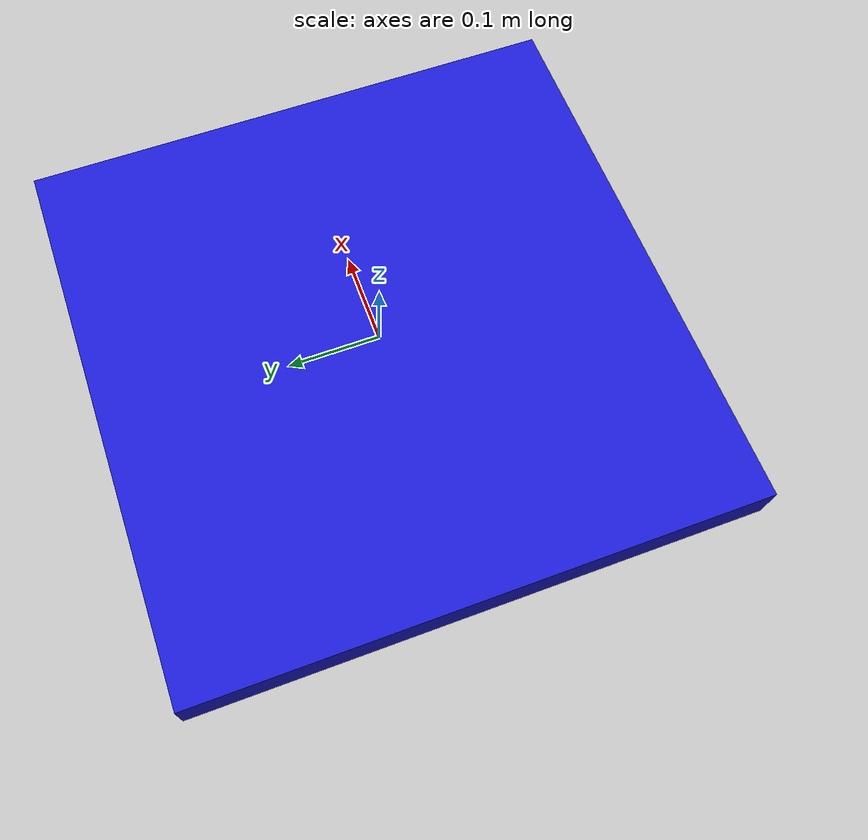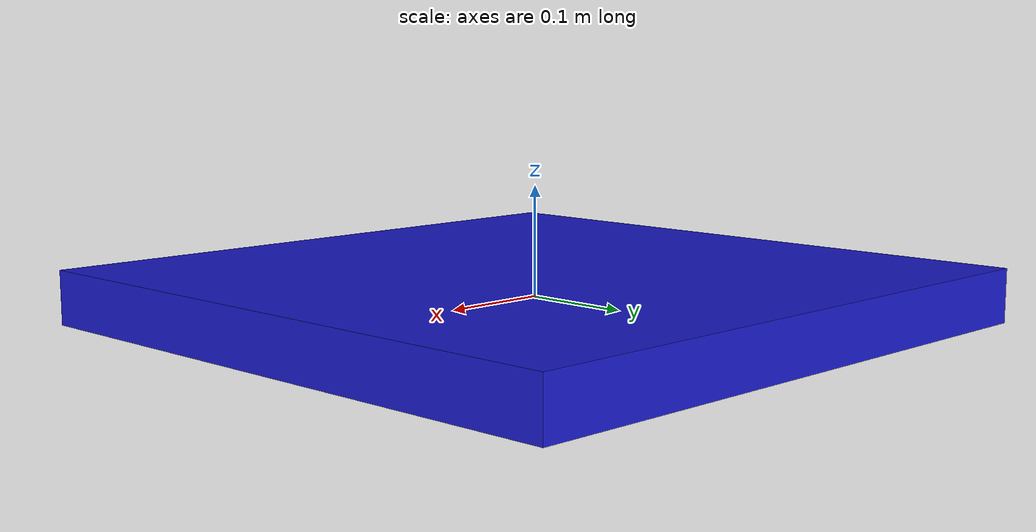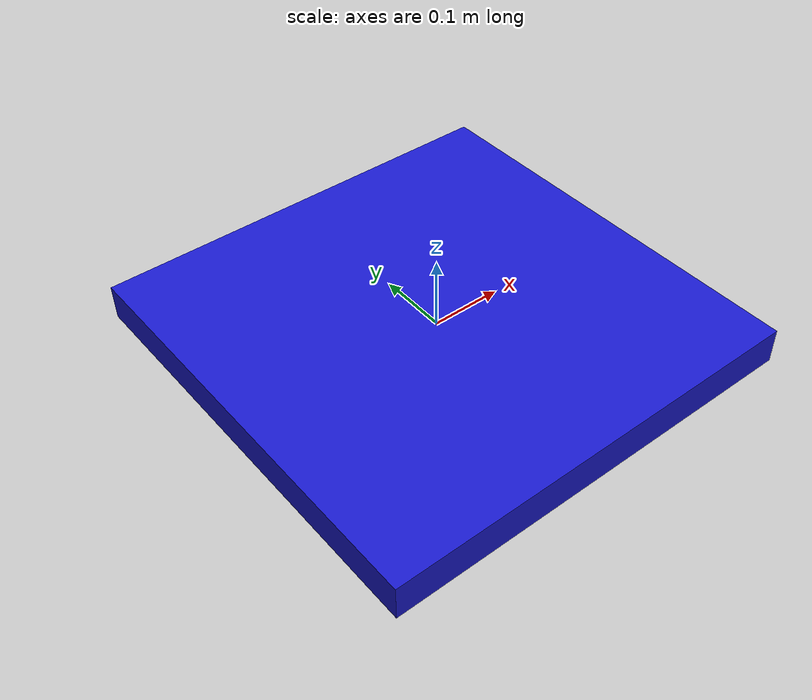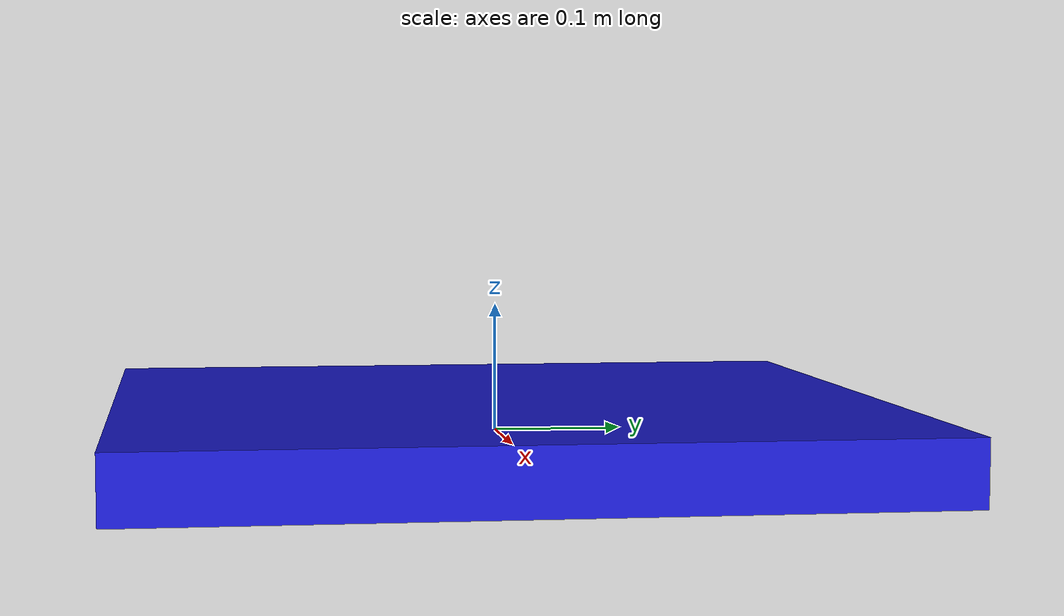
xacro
<?xml version="1.0"?>
<robot name="drone" xmlns:xacro="http://www.ros.org/wiki/xacro">

  <!-- Base Link Definition -->
  <link name="base_link">
    <inertial>
      <mass value="1.5"/>
      <origin xyz="0 0 0" rpy="0 0 0"/>
      <inertia ixx="0.01" ixy="0.0" ixz="0.0" iyy="0.01" iyz="0.0" izz="0.02"/>
    </inertial>
    <visual>
      <geometry>
        <!-- Simple cross shape for the body -->
        <box size="0.6 0.6 0.05"/>
      </geometry>
      <material name="blue">
        <color rgba="0.1 0.1 0.8 1.0"/>
      </material>
    </visual>
    <collision>
      <geometry>
        <box size="0.6 0.6 0.05"/>
      </geometry>
    </collision>
  </link>

  <!-- Gazebo Plugin for Multirotor Control -->
  <!-- This is the crucial part that allows the model to be controlled as a drone -->
  <gazebo>
    <plugin name="gazebo_ros_control" filename="libgazebo_ros_control.so"/>
  </gazebo>

  <gazebo reference="base_link">
    <material>Gazebo/Blue</material>
    <self_collide>true</self_collide>
    <!-- Simplified Multirotor Plugin - Requires dedicated setup, using ROS control as a placeholder -->
  </gazebo>

</robot>
